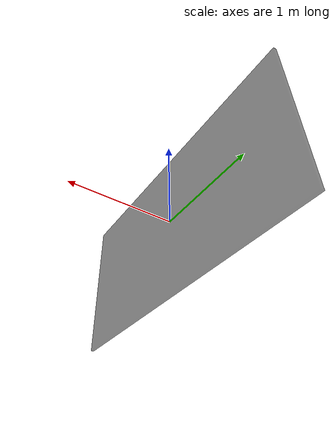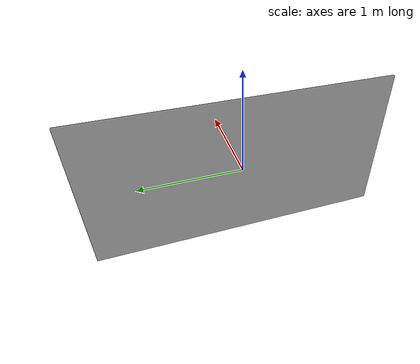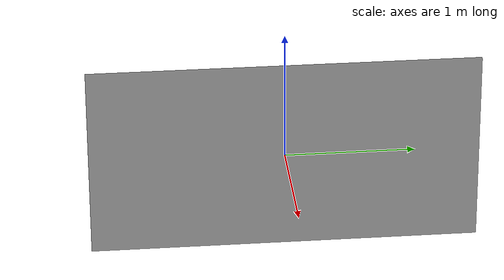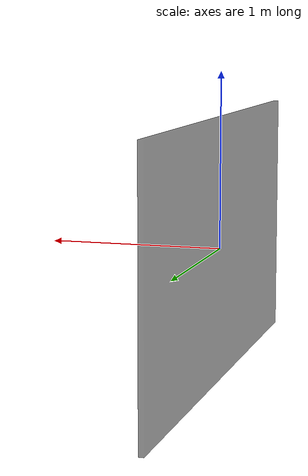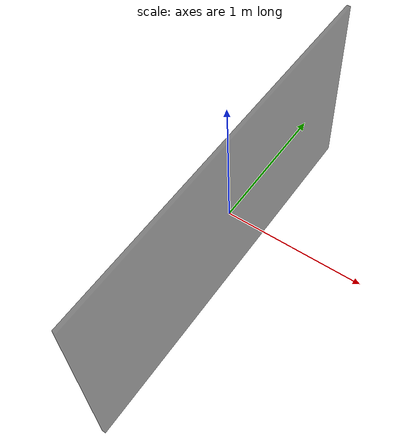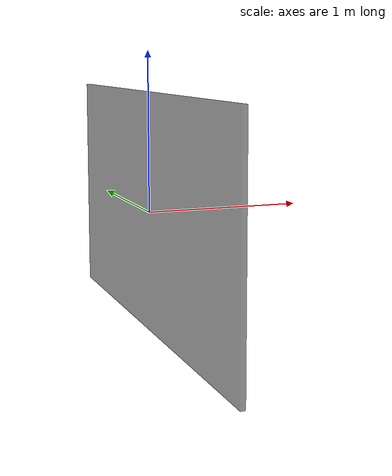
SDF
<?xml version='1.0'?>
<sdf version='1.7'>
  <model name='parede'>
    <link name='link'>
      <visual name='visual'>
        <geometry>
          <box>
            <size>0.03 3 1.5</size>
          </box>
        </geometry>
        <material>
          <ambient>0 0 0 0.5</ambient> <!-- Transparência controlada aqui -->
          <diffuse>0 0 0 0.5</diffuse> <!-- Preto semi-transparente -->
          <specular>0.2 0.2 0.2 1</specular> <!-- Reflexo leve -->
        </material>
        <transparency>0.5</transparency> <!-- Meio transparente -->
      </visual>
      <collision name='collision'>
        <geometry>
          <box>
            <size>0.03 3 1.5</size>
          </box>
        </geometry>
      </collision>
    </link>
    <static>1</static>
  </model>
</sdf>
